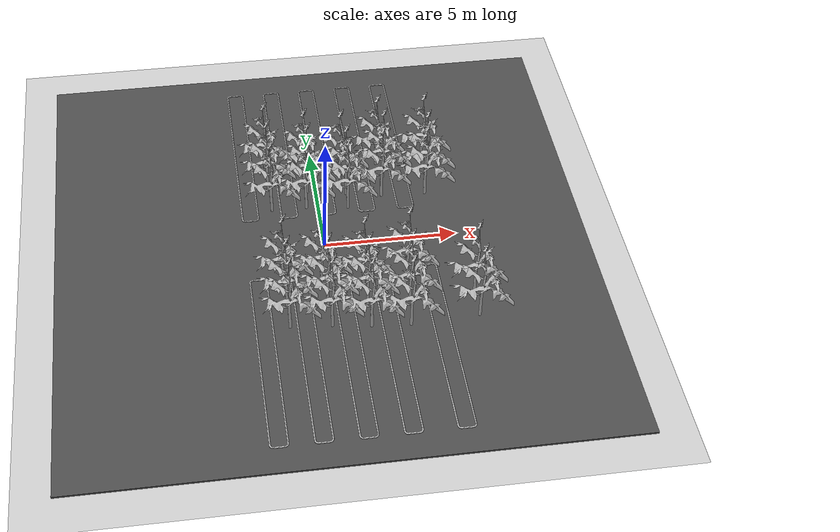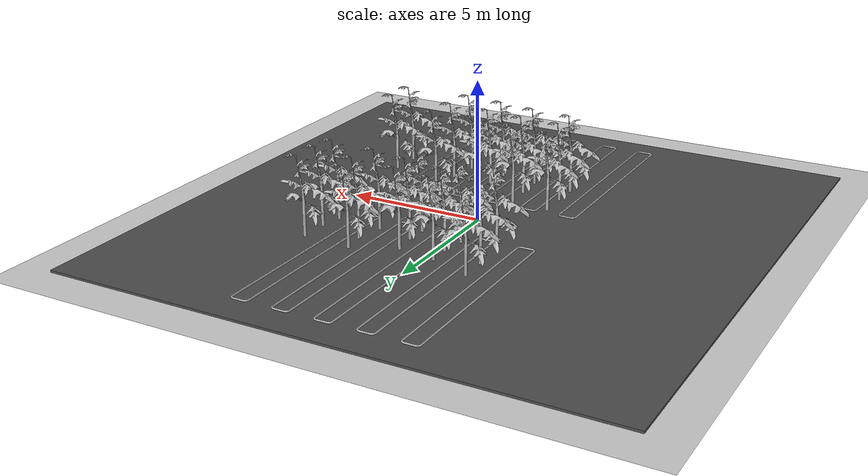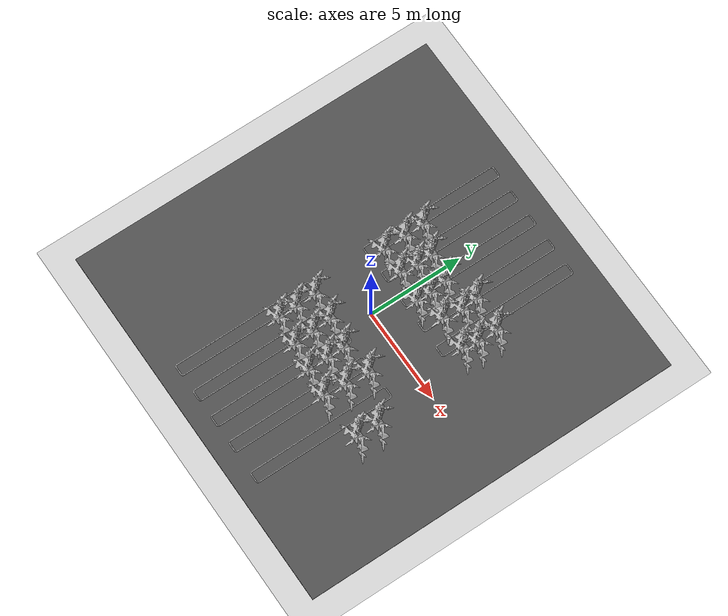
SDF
<sdf version="1.7">
 <world name="default">
  <light name="sun" type="directional">
   <pose>0 0 10 0 -0 0</pose>
   <diffuse>0.8 0.8 0.8 1</diffuse>
   <specular>0.2 0.2 0.2 1</specular>
   <attenuation>
    <range>1000</range>
    <constant>0.9</constant>
    <linear>0.01</linear>
    <quadratic>0.001</quadratic>
   </attenuation>
   <direction>-0.5 0.1 -0.9</direction>
   <spot><inner_angle>0</inner_angle><outer_angle>0</outer_angle><falloff>0</falloff></spot>
  </light>
  <model name="ground_plane">
   <static>1</static>
   <link name="link">
    <collision name="collision">
     <geometry><plane><normal>0 0 1</normal><size>100 100</size></plane></geometry>
     <surface><friction><ode><mu>100</mu><mu2>50</mu2></ode></friction></surface>
    </collision>
    <visual name="visual">
     <cast_shadows>0</cast_shadows>
     <geometry><plane><normal>0 0 1</normal><size>100 100</size></plane></geometry>
     <material>
      <script><uri>file://media/materials/scripts/gazebo.material</uri><name>Gazebo/Grey</name></script>
     </material>
    </visual>
   </link>
  </model>
  <gravity>0 0 -9.8</gravity>
  <magnetic_field>6e-06 2.3e-05 -4.2e-05</magnetic_field>
  <atmosphere type="adiabatic"/>
  <physics type="ode">
   <max_step_size>0.001</max_step_size>
   <real_time_factor>1</real_time_factor>
   <real_time_update_rate>1000</real_time_update_rate>
  </physics>
  <scene><ambient>0.4 0.4 0.4 1</ambient><background>0.7 0.7 0.7 1</background><shadows>1</shadows></scene>
  <spherical_coordinates>
   <surface_model>EARTH_WGS84</surface_model>
   <latitude_deg>0</latitude_deg>
   <longitude_deg>0</longitude_deg>
   <elevation>0</elevation>
   <heading_deg>0</heading_deg>
  </spherical_coordinates>
  <model name="asphalt_plane">
   <static>1</static>
   <link name="link">
    <collision name="collision"><geometry><box><size>20 20 0.1</size></box></geometry></collision>
    <visual name="visual">
     <cast_shadows>0</cast_shadows>
     <geometry><box><size>20 20 0.1</size></box></geometry>
     <material>
      <script>
       <uri>model://asphalt_plane/materials/scripts</uri>
       <uri>model://asphalt_plane/materials/textures</uri>
       <name>vrc/asphalt</name>
      </script>
     </material>
    </visual>
   </link>
   <pose>-0.089672 0.059574 0 0 -0 0</pose>
  </model>
  <light name="user_directional_light_0" type="directional">
   <pose>-5.63054 -11.2657 1 0 -0 0</pose>
   <diffuse>0.5 0.5 0.5 1</diffuse>
   <specular>0.1 0.1 0.1 1</specular>
   <direction>0.1 0.1 -0.9</direction>
   <attenuation>
    <range>20</range>
    <constant>0.5</constant>
    <linear>0.01</linear>
    <quadratic>0.001</quadratic>
   </attenuation>
   <spot><inner_angle>0</inner_angle><outer_angle>0</outer_angle><falloff>0</falloff></spot>
  </light>
  <light name="user_directional_light_1" type="directional">
   <pose>10.4762 9.60881 1 0 -0 0</pose>
   <diffuse>0.5 0.5 0.5 1</diffuse>
   <specular>0.1 0.1 0.1 1</specular>
   <direction>0.1 0.1 -0.9</direction>
   <attenuation>
    <range>20</range>
    <constant>0.5</constant>
    <linear>0.01</linear>
    <quadratic>0.001</quadratic>
   </attenuation>
   <spot><inner_angle>0</inner_angle><outer_angle>0</outer_angle><falloff>0</falloff></spot>
  </light>
  <audio><device>default</device></audio>
  <model name="piperail">
   <static>1</static>
   <link name="link">
    <collision name="collision">
     <geometry>
      <mesh><scale>0.001 0.001 0.001</scale><uri>model://piperail/meshes/piperail.STL</uri></mesh>
     </geometry>
    </collision>
    <visual name="visual">
     <geometry>
      <mesh><scale>0.001 0.001 0.001</scale><uri>model://piperail/meshes/piperail.STL</uri></mesh>
     </geometry>
    </visual>
   </link>
   <pose>0 -1.5 0.05 1.57 -0 0</pose>
  </model>
  <model name="plant">
   <static>1</static>
   <link name="link">
    <visual name="visual">
     <geometry><mesh><scale>0.01 0.01 0.01</scale><uri>model://plant/meshes/plant.STL</uri></mesh></geometry>
    </visual>
   </link>
   <pose>1.77763 -1.13342 -0.001164 1.57 -0 0</pose>
  </model>
  <model name="plant_clone">
   <static>1</static>
   <link name="link">
    <visual name="visual">
     <geometry><mesh><scale>0.01 0.01 0.01</scale><uri>model://plant/meshes/plant.STL</uri></mesh></geometry>
    </visual>
   </link>
   <pose>1.66545 -2.31829 0.002201 1.57 -0 0</pose>
  </model>
  <model name="plant_clone_0">
   <static>1</static>
   <link name="link">
    <visual name="visual">
     <geometry><mesh><scale>0.01 0.01 0.01</scale><uri>model://plant/meshes/plant.STL</uri></mesh></geometry>
    </visual>
   </link>
   <pose>1.5257 -3.44822 0.004669 1.57 -0 0</pose>
  </model>
  <model name="plant_clone_1">
   <static>1</static>
   <link name="link">
    <visual name="visual">
     <geometry><mesh><scale>0.01 0.01 0.01</scale><uri>model://plant/meshes/plant.STL</uri></mesh></geometry>
    </visual>
   </link>
   <pose>1.49228 3.17394 0.000845 1.57 -0 0</pose>
  </model>
  <model name="plant_clone_2">
   <static>1</static>
   <link name="link">
    <visual name="visual">
     <geometry><mesh><scale>0.01 0.01 0.01</scale><uri>model://plant/meshes/plant.STL</uri></mesh></geometry>
    </visual>
   </link>
   <pose>1.68663 4.1733 0.001925 1.57 -0 0</pose>
  </model>
  <model name="piperail_clone">
   <static>1</static>
   <link name="link">
    <collision name="collision">
     <geometry>
      <mesh><scale>0.001 0.001 0.001</scale><uri>model://piperail/meshes/piperail.STL</uri></mesh>
     </geometry>
    </collision>
    <visual name="visual">
     <geometry>
      <mesh><scale>0.001 0.001 0.001</scale><uri>model://piperail/meshes/piperail.STL</uri></mesh>
     </geometry>
    </visual>
   </link>
   <pose>-0.016211 9 0.05 1.57 -0 0</pose>
  </model>
  <model name="piperail_clone_0">
   <static>1</static>
   <link name="link">
    <collision name="collision">
     <geometry>
      <mesh><scale>0.001 0.001 0.001</scale><uri>model://piperail/meshes/piperail.STL</uri></mesh>
     </geometry>
    </collision>
    <visual name="visual">
     <geometry>
      <mesh><scale>0.001 0.001 0.001</scale><uri>model://piperail/meshes/piperail.STL</uri></mesh>
     </geometry>
    </visual>
   </link>
   <pose>1.5 -1.5 0.05 1.57 -0 0</pose>
  </model>
  <model name="piperail_clone_1">
   <static>1</static>
   <link name="link">
    <collision name="collision">
     <geometry>
      <mesh><scale>0.001 0.001 0.001</scale><uri>model://piperail/meshes/piperail.STL</uri></mesh>
     </geometry>
    </collision>
    <visual name="visual">
     <geometry>
      <mesh><scale>0.001 0.001 0.001</scale><uri>model://piperail/meshes/piperail.STL</uri></mesh>
     </geometry>
    </visual>
   </link>
   <pose>3.3 -1.5 0.05 1.57 -0 0</pose>
  </model>
  <model name="piperail_clone_2">
   <static>1</static>
   <link name="link">
    <collision name="collision">
     <geometry>
      <mesh><scale>0.001 0.001 0.001</scale><uri>model://piperail/meshes/piperail.STL</uri></mesh>
     </geometry>
    </collision>
    <visual name="visual">
     <geometry>
      <mesh><scale>0.001 0.001 0.001</scale><uri>model://piperail/meshes/piperail.STL</uri></mesh>
     </geometry>
    </visual>
   </link>
   <pose>-1.5 -1.5 0.05 1.57 -0 0</pose>
  </model>
  <model name="piperail_clone_3">
   <static>1</static>
   <link name="link">
    <collision name="collision">
     <geometry>
      <mesh><scale>0.001 0.001 0.001</scale><uri>model://piperail/meshes/piperail.STL</uri></mesh>
     </geometry>
    </collision>
    <visual name="visual">
     <geometry>
      <mesh><scale>0.001 0.001 0.001</scale><uri>model://piperail/meshes/piperail.STL</uri></mesh>
     </geometry>
    </visual>
   </link>
   <pose>-3 -1.5 0.05 1.57 -0 0</pose>
  </model>
  <model name="piperail_clone_4">
   <static>1</static>
   <link name="link">
    <collision name="collision">
     <geometry>
      <mesh><scale>0.001 0.001 0.001</scale><uri>model://piperail/meshes/piperail.STL</uri></mesh>
     </geometry>
    </collision>
    <visual name="visual">
     <geometry>
      <mesh><scale>0.001 0.001 0.001</scale><uri>model://piperail/meshes/piperail.STL</uri></mesh>
     </geometry>
    </visual>
   </link>
   <pose>-1.5 9 0.05 1.57 -0 0</pose>
  </model>
  <model name="piperail_clone_5">
   <static>1</static>
   <link name="link">
    <collision name="collision">
     <geometry>
      <mesh><scale>0.001 0.001 0.001</scale><uri>model://piperail/meshes/piperail.STL</uri></mesh>
     </geometry>
    </collision>
    <visual name="visual">
     <geometry>
      <mesh><scale>0.001 0.001 0.001</scale><uri>model://piperail/meshes/piperail.STL</uri></mesh>
     </geometry>
    </visual>
   </link>
   <pose>-3 9 0.05 1.57 -0 0</pose>
  </model>
  <model name="piperail_clone_6">
   <static>1</static>
   <link name="link">
    <collision name="collision">
     <geometry>
      <mesh><scale>0.001 0.001 0.001</scale><uri>model://piperail/meshes/piperail.STL</uri></mesh>
     </geometry>
    </collision>
    <visual name="visual">
     <geometry>
      <mesh><scale>0.001 0.001 0.001</scale><uri>model://piperail/meshes/piperail.STL</uri></mesh>
     </geometry>
    </visual>
   </link>
   <pose>1.5 9 0.05 1.57 -0 0</pose>
  </model>
  <model name="piperail_clone_7">
   <static>1</static>
   <link name="link">
    <collision name="collision">
     <geometry>
      <mesh><scale>0.001 0.001 0.001</scale><uri>model://piperail/meshes/piperail.STL</uri></mesh>
     </geometry>
    </collision>
    <visual name="visual">
     <geometry>
      <mesh><scale>0.001 0.001 0.001</scale><uri>model://piperail/meshes/piperail.STL</uri></mesh>
     </geometry>
    </visual>
   </link>
   <pose>3 9 0.05 1.57 -0 0</pose>
  </model>
  <model name="plant_clone_1_clone">
   <static>1</static>
   <link name="link">
    <visual name="visual">
     <geometry><mesh><scale>0.01 0.01 0.01</scale><uri>model://plant/meshes/plant.STL</uri></mesh></geometry>
    </visual>
   </link>
   <pose>0.017412 4.30864 0.000845 1.57 -0 0</pose>
  </model>
  <model name="plant_clone_1_clone_0">
   <static>1</static>
   <link name="link">
    <visual name="visual">
     <geometry><mesh><scale>0.01 0.01 0.01</scale><uri>model://plant/meshes/plant.STL</uri></mesh></geometry>
    </visual>
   </link>
   <pose>0.140209 3.43982 0.000845 1.57 -0 0</pose>
  </model>
  <model name="plant_clone_1_clone_1">
   <static>1</static>
   <link name="link">
    <visual name="visual">
     <geometry><mesh><scale>0.01 0.01 0.01</scale><uri>model://plant/meshes/plant.STL</uri></mesh></geometry>
    </visual>
   </link>
   <pose>0.114715 2.68601 0.000845 1.57 -0 0</pose>
  </model>
  <model name="plant_clone_1_clone_2">
   <static>1</static>
   <link name="link">
    <visual name="visual">
     <geometry><mesh><scale>0.01 0.01 0.01</scale><uri>model://plant/meshes/plant.STL</uri></mesh></geometry>
    </visual>
   </link>
   <pose>-1.38801 4.52892 0.000845 1.57 -0 0</pose>
  </model>
  <model name="plant_clone_1_clone_3">
   <static>1</static>
   <link name="link">
    <visual name="visual">
     <geometry><mesh><scale>0.01 0.01 0.01</scale><uri>model://plant/meshes/plant.STL</uri></mesh></geometry>
    </visual>
   </link>
   <pose>-1.34584 3.71141 0.000845 1.57 -0 0</pose>
  </model>
  <model name="plant_clone_1_clone_4">
   <static>1</static>
   <link name="link">
    <visual name="visual">
     <geometry><mesh><scale>0.01 0.01 0.01</scale><uri>model://plant/meshes/plant.STL</uri></mesh></geometry>
    </visual>
   </link>
   <pose>-1.48013 2.86029 0.000845 1.57 -0 0</pose>
  </model>
  <model name="plant_clone_1_clone_5">
   <static>1</static>
   <link name="link">
    <visual name="visual">
     <geometry><mesh><scale>0.01 0.01 0.01</scale><uri>model://plant/meshes/plant.STL</uri></mesh></geometry>
    </visual>
   </link>
   <pose>-2.86965 5.0816 0.000845 1.57 -0 0</pose>
  </model>
  <model name="plant_clone_1_clone_6">
   <static>1</static>
   <link name="link">
    <visual name="visual">
     <geometry><mesh><scale>0.01 0.01 0.01</scale><uri>model://plant/meshes/plant.STL</uri></mesh></geometry>
    </visual>
   </link>
   <pose>-2.84798 4.0609 0.000845 1.57 -0 0</pose>
  </model>
  <model name="plant_clone_1_clone_7">
   <static>1</static>
   <link name="link">
    <visual name="visual">
     <geometry><mesh><scale>0.01 0.01 0.01</scale><uri>model://plant/meshes/plant.STL</uri></mesh></geometry>
    </visual>
   </link>
   <pose>-2.81594 2.86917 0.000845 1.57 -0 0</pose>
  </model>
  <model name="plant_clone_1_clone_8">
   <static>1</static>
   <link name="link">
    <visual name="visual">
     <geometry><mesh><scale>0.01 0.01 0.01</scale><uri>model://plant/meshes/plant.STL</uri></mesh></geometry>
    </visual>
   </link>
   <pose>1.55643 4.99352 0.000845 1.57 -0 0</pose>
  </model>
  <model name="plant_clone_1_clone_9">
   <static>1</static>
   <link name="link">
    <visual name="visual">
     <geometry><mesh><scale>0.01 0.01 0.01</scale><uri>model://plant/meshes/plant.STL</uri></mesh></geometry>
    </visual>
   </link>
   <pose>0.112161 -1.39635 0.000845 1.57 -0 0</pose>
  </model>
  <model name="plant_clone_1_clone_10">
   <static>1</static>
   <link name="link">
    <visual name="visual">
     <geometry><mesh><scale>0.01 0.01 0.01</scale><uri>model://plant/meshes/plant.STL</uri></mesh></geometry>
    </visual>
   </link>
   <pose>0.130082 -2.29707 0.000845 1.57 -0 0</pose>
  </model>
  <model name="plant_clone_1_clone_11">
   <static>1</static>
   <link name="link">
    <visual name="visual">
     <geometry><mesh><scale>0.01 0.01 0.01</scale><uri>model://plant/meshes/plant.STL</uri></mesh></geometry>
    </visual>
   </link>
   <pose>0.121458 -3.34587 0.000845 1.57 -0 0</pose>
  </model>
  <model name="plant_clone_1_clone_12">
   <static>1</static>
   <link name="link">
    <visual name="visual">
     <geometry><mesh><scale>0.01 0.01 0.01</scale><uri>model://plant/meshes/plant.STL</uri></mesh></geometry>
    </visual>
   </link>
   <pose>-1.38485 -1.1272 0.000845 1.57 -0 0</pose>
  </model>
  <model name="plant_clone_1_clone_13">
   <static>1</static>
   <link name="link">
    <visual name="visual">
     <geometry><mesh><scale>0.01 0.01 0.01</scale><uri>model://plant/meshes/plant.STL</uri></mesh></geometry>
    </visual>
   </link>
   <pose>-1.29326 -2.14513 0.000845 1.57 -0 0</pose>
  </model>
  <model name="plant_clone_1_clone_14">
   <static>1</static>
   <link name="link">
    <visual name="visual">
     <geometry><mesh><scale>0.01 0.01 0.01</scale><uri>model://plant/meshes/plant.STL</uri></mesh></geometry>
    </visual>
   </link>
   <pose>-1.26249 -3.15905 0.000845 1.57 -0 0</pose>
  </model>
  <model name="plant_clone_1_clone_15">
   <static>1</static>
   <link name="link">
    <visual name="visual">
     <geometry><mesh><scale>0.01 0.01 0.01</scale><uri>model://plant/meshes/plant.STL</uri></mesh></geometry>
    </visual>
   </link>
   <pose>-2.79115 -1.01945 0.000845 1.57 -0 0</pose>
  </model>
  <model name="plant_clone_1_clone_16">
   <static>1</static>
   <link name="link">
    <visual name="visual">
     <geometry><mesh><scale>0.01 0.01 0.01</scale><uri>model://plant/meshes/plant.STL</uri></mesh></geometry>
    </visual>
   </link>
   <pose>-2.76366 -2.09337 0.000845 1.57 -0 0</pose>
  </model>
  <model name="plant_clone_1_clone_17">
   <static>1</static>
   <link name="link">
    <visual name="visual">
     <geometry><mesh><scale>0.01 0.01 0.01</scale><uri>model://plant/meshes/plant.STL</uri></mesh></geometry>
    </visual>
   </link>
   <pose>-2.75946 -3.03792 0.000845 1.57 -0 0</pose>
  </model>
  <model name="plant_clone_1_clone_19">
   <static>1</static>
   <link name="link">
    <visual name="visual">
     <geometry><mesh><scale>0.01 0.01 0.01</scale><uri>model://plant/meshes/plant.STL</uri></mesh></geometry>
    </visual>
   </link>
   <pose>4.06552 -2.18792 0.000845 1.57 -0 0</pose>
  </model>
  <model name="plant_clone_1_clone_20">
   <static>1</static>
   <link name="link">
    <visual name="visual">
     <geometry><mesh><scale>0.01 0.01 0.01</scale><uri>model://plant/meshes/plant.STL</uri></mesh></geometry>
    </visual>
   </link>
   <pose>4.03807 -3.30841 0.000845 1.57 -0 0</pose>
  </model>
  <model name="plant_clone_1_clone_21">
   <static>1</static>
   <link name="link">
    <visual name="visual">
     <geometry><mesh><scale>0.01 0.01 0.01</scale><uri>model://plant/meshes/plant.STL</uri></mesh></geometry>
    </visual>
   </link>
   <pose>3.36217 4.88797 0.000845 1.57 -0 0</pose>
  </model>
  <model name="plant_clone_1_clone_22">
   <static>1</static>
   <link name="link">
    <visual name="visual">
     <geometry><mesh><scale>0.01 0.01 0.01</scale><uri>model://plant/meshes/plant.STL</uri></mesh></geometry>
    </visual>
   </link>
   <pose>3.34479 3.86027 0.000845 1.57 -0 0</pose>
  </model>
  <model name="plant_clone_1_clone_23">
   <static>1</static>
   <link name="link">
    <visual name="visual">
     <geometry><mesh><scale>0.01 0.01 0.01</scale><uri>model://plant/meshes/plant.STL</uri></mesh></geometry>
    </visual>
   </link>
   <pose>3.18776 3.098 0.000845 1.57 -0 0</pose>
  </model>
 </world>
</sdf>
